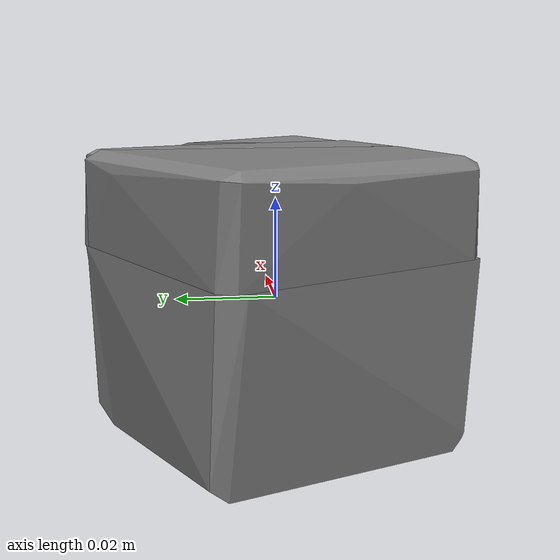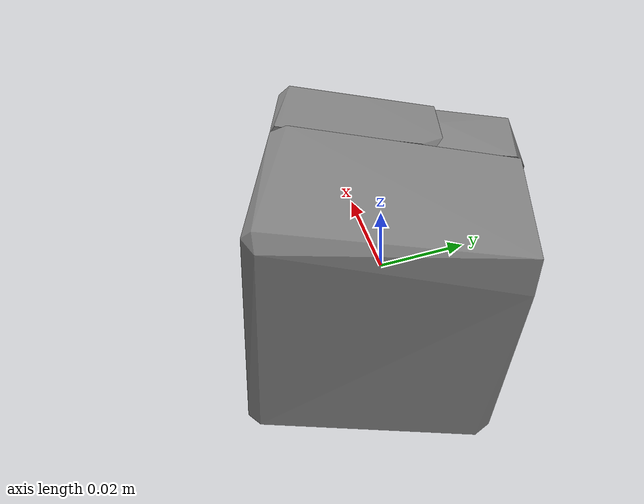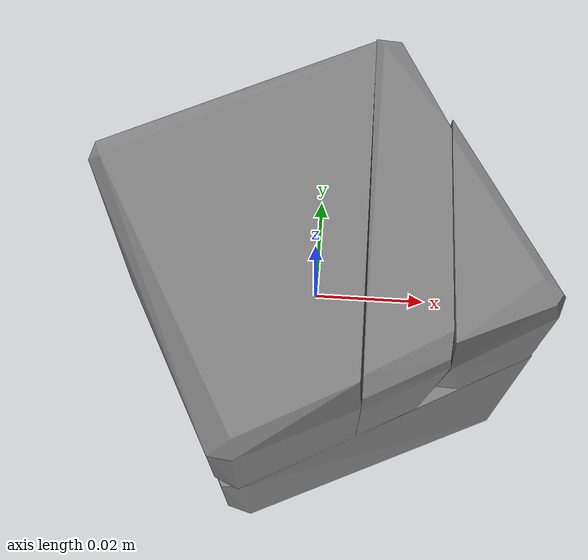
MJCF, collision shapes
<mujoco model="rubiks_cube">
  <compiler angle="radian" />

  <asset>
    <mesh name="rubiks_cube_visual_mesh" file="rubiks_cube/textured.obj" />
    <mesh name="rubiks_cube_collision_mesh_0" file="rubiks_cube/textured_coacd_0.stl" />
    <mesh name="rubiks_cube_collision_mesh_1" file="rubiks_cube/textured_coacd_1.stl" />
    <mesh name="rubiks_cube_collision_mesh_2" file="rubiks_cube/textured_coacd_2.stl" />
    <mesh name="rubiks_cube_collision_mesh_3" file="rubiks_cube/textured_coacd_3.stl" />
    <texture name="rubiks_cube_texture" type="2d" file="rubiks_cube/texture_map.png" />
    <material name="rubiks_cube_material" texture="rubiks_cube_texture" />
  </asset>

  <worldbody>
    <body name="rubiks_cube" pos="0 0 0" euler="0 0 0">
      <freejoint name="rubiks_cube_joint" />
      <geom name="rubiks_cube_visual_geom" type="mesh" mesh="rubiks_cube_visual_mesh" material="rubiks_cube_material" pos="0.016219049878342388 0.00048529056442859776 -0.028589928178413302" euler="0 0 0" contype="0" conaffinity="0" group="0" />
      <geom name="rubiks_cube_collision_geom_0" type="mesh" mesh="rubiks_cube_collision_mesh_0" pos="0.016219049878342388 0.00048529056442859776 -0.028589928178413302" euler="0 0 0" contype="1" conaffinity="1" group="3" />
      <geom name="rubiks_cube_collision_geom_1" type="mesh" mesh="rubiks_cube_collision_mesh_1" pos="0.016219049878342388 0.00048529056442859776 -0.028589928178413302" euler="0 0 0" contype="1" conaffinity="1" group="3" />
      <geom name="rubiks_cube_collision_geom_2" type="mesh" mesh="rubiks_cube_collision_mesh_2" pos="0.016219049878342388 0.00048529056442859776 -0.028589928178413302" euler="0 0 0" contype="1" conaffinity="1" group="3" />
      <geom name="rubiks_cube_collision_geom_3" type="mesh" mesh="rubiks_cube_collision_mesh_3" pos="0.016219049878342388 0.00048529056442859776 -0.028589928178413302" euler="0 0 0" contype="1" conaffinity="1" group="3" />
      <inertial pos="0 0 0" euler="0 0 0" mass="0.094" diaginertia="0.001 0.001 0.001" />
    </body>
  </worldbody>
</mujoco>
